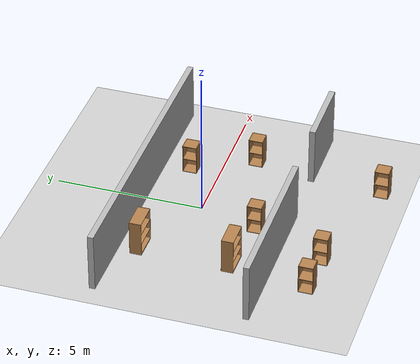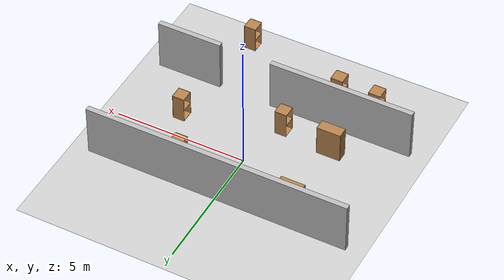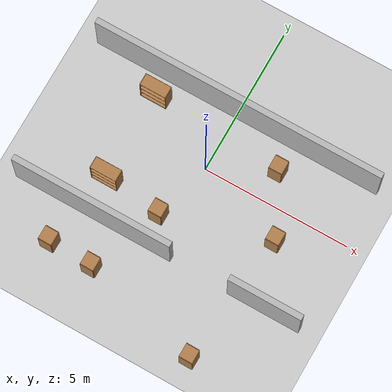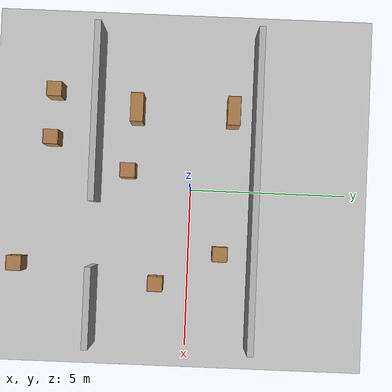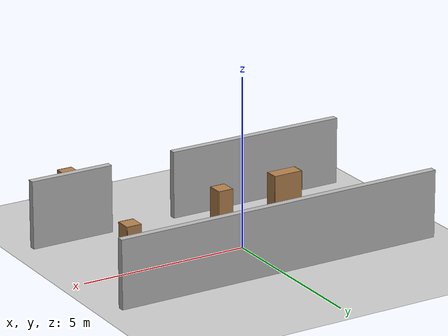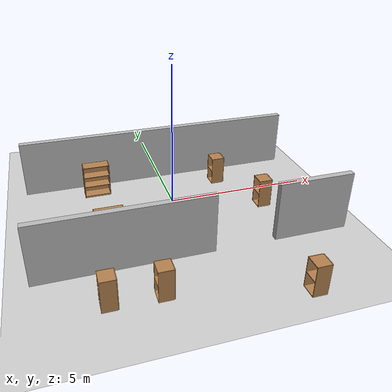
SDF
<sdf version="1.7">
 <world name="default">
  <model name="ground_plane">
   <static>1</static>
   <link name="link">
    <collision name="collision">
     <geometry><plane><normal>0 0 1</normal><size>100 100</size></plane></geometry>
     <surface><friction><ode><mu>100</mu><mu2>50</mu2></ode></friction></surface>
    </collision>
    <visual name="visual">
     <cast_shadows>0</cast_shadows>
     <geometry><plane><normal>0 0 1</normal><size>100 100</size></plane></geometry>
     <material>
      <script><uri>file://media/materials/scripts/gazebo.material</uri><name>Gazebo/Grey</name></script>
     </material>
    </visual>
    <velocity_decay><linear>0</linear><angular>0</angular></velocity_decay>
   </link>
  </model>
  <model name="wall_2_model">
   <pose>0 2 1 0 -0 0</pose>
   <static>1</static>
   <link name="wall_2_body">
    <inertial>
     <mass>1</mass>
     <inertia><ixx>1</ixx><ixy>0</ixy><ixz>0</ixz><iyy>1</iyy><iyz>0</iyz><izz>1</izz></inertia>
    </inertial>
    <collision name="collision"><geometry><box><size>10 0.2 2</size></box></geometry></collision>
    <visual name="visual"><geometry><box><size>10 0.2 2</size></box></geometry></visual>
    <velocity_decay><linear>0</linear><angular>0</angular></velocity_decay>
   </link>
  </model>
  <model name="wall_5_model">
   <pose>-2.25 -3 1 0 -0 0</pose>
   <static>1</static>
   <link name="wall_5_body">
    <inertial>
     <mass>1</mass>
     <inertia><ixx>1</ixx><ixy>0</ixy><ixz>0</ixz><iyy>1</iyy><iyz>0</iyz><izz>1</izz></inertia>
    </inertial>
    <collision name="collision"><geometry><box><size>5.5 0.2 2</size></box></geometry></collision>
    <visual name="visual"><geometry><box><size>5.5 0.2 2</size></box></geometry></visual>
    <velocity_decay><linear>0</linear><angular>0</angular></velocity_decay>
   </link>
  </model>
  <model name="wall_6_model">
   <pose>3.75 -3 1 0 -0 0</pose>
   <static>1</static>
   <link name="wall_6_body">
    <inertial>
     <mass>1</mass>
     <inertia><ixx>1</ixx><ixy>0</ixy><ixz>0</ixz><iyy>1</iyy><iyz>0</iyz><izz>1</izz></inertia>
    </inertial>
    <collision name="collision"><geometry><box><size>2.5 0.2 2</size></box></geometry></collision>
    <visual name="visual"><geometry><box><size>2.5 0.2 2</size></box></geometry></visual>
    <velocity_decay><linear>0</linear><angular>0</angular></velocity_decay>
   </link>
  </model>
  <model name="cabinet">
   <static>0</static>
   <link name="cabinet_bottom_plate">
    <inertial>
     <pose>0 0 -1 0 -0 0</pose>
     <inertia><ixx>2.05</ixx><ixy>0</ixy><ixz>0</ixz><iyy>2.05</iyy><iyz>0</iyz><izz>2.05</izz></inertia>
     <mass>25</mass>
    </inertial>
    <collision name="cabinet_bottom_plate_geom">
     <pose>0 0 0.01 0 -0 0</pose>
     <geometry><box><size>0.45 0.45 0.02</size></box></geometry>
    </collision>
    <visual name="cabinet_bottom_plate_geom_visual">
     <pose>0 0 0.01 0 -0 0</pose>
     <geometry><box><size>0.45 0.45 0.02</size></box></geometry>
     <material>
      <script><uri>file://media/materials/scripts/gazebo.material</uri><name>Gazebo/Wood</name></script>
     </material>
    </visual>
    <collision name="cabinet_bottom_plate_geom_cabinet_back_plate">
     <pose>0.235 0 0.51 0 -0 0</pose>
     <geometry><box><size>0.02 0.45 1.02</size></box></geometry>
    </collision>
    <visual name="cabinet_bottom_plate_geom_cabinet_back_plate_visual">
     <pose>0.235 0 0.51 0 -0 0</pose>
     <geometry><box><size>0.02 0.45 1.02</size></box></geometry>
     <material>
      <script><uri>file://media/materials/scripts/gazebo.material</uri><name>Gazebo/Wood</name></script>
     </material>
    </visual>
    <collision name="cabinet_bottom_plate_geom_cabinet_left_plate">
     <pose>0 0.235 0.51 0 -0 0</pose>
     <geometry><box><size>0.45 0.02 1.02</size></box></geometry>
    </collision>
    <visual name="cabinet_bottom_plate_geom_cabinet_left_plate_visual">
     <pose>0 0.235 0.51 0 -0 0</pose>
     <geometry><box><size>0.45 0.02 1.02</size></box></geometry>
     <material>
      <script><uri>file://media/materials/scripts/gazebo.material</uri><name>Gazebo/Wood</name></script>
     </material>
    </visual>
    <collision name="cabinet_bottom_plate_geom_cabinet_middle_plate">
     <pose>0 0 0.51 0 -0 0</pose>
     <geometry><box><size>0.45 0.45 0.02</size></box></geometry>
    </collision>
    <visual name="cabinet_bottom_plate_geom_cabinet_middle_plate_visual">
     <pose>0 0 0.51 0 -0 0</pose>
     <geometry><box><size>0.45 0.45 0.02</size></box></geometry>
     <material>
      <script><uri>file://media/materials/scripts/gazebo.material</uri><name>Gazebo/Wood</name></script>
     </material>
    </visual>
    <collision name="cabinet_bottom_plate_geom_cabinet_right_plate">
     <pose>0 -0.235 0.51 0 -0 0</pose>
     <geometry><box><size>0.45 0.02 1.02</size></box></geometry>
    </collision>
    <visual name="cabinet_bottom_plate_geom_cabinet_right_plate_visual">
     <pose>0 -0.235 0.51 0 -0 0</pose>
     <geometry><box><size>0.45 0.02 1.02</size></box></geometry>
     <material>
      <script><uri>file://media/materials/scripts/gazebo.material</uri><name>Gazebo/Wood</name></script>
     </material>
    </visual>
    <collision name="cabinet_bottom_plate_geom_cabinet_top_plate">
     <pose>0 0 1.01 0 -0 0</pose>
     <geometry><box><size>0.45 0.45 0.02</size></box></geometry>
    </collision>
    <visual name="cabinet_bottom_plate_geom_cabinet_top_plate_visual">
     <pose>0 0 1.01 0 -0 0</pose>
     <geometry><box><size>0.45 0.45 0.02</size></box></geometry>
     <material>
      <script><uri>file://media/materials/scripts/gazebo.material</uri><name>Gazebo/Wood</name></script>
     </material>
    </visual>
    <velocity_decay><linear>0</linear><angular>0</angular></velocity_decay>
   </link>
   <pose>1.99908 0.99991 -0 0 -2e-06 0.000704</pose>
  </model>
  <model name="cabinet_0">
   <static>0</static>
   <link name="cabinet_bottom_plate">
    <inertial>
     <pose>0 0 -1 0 -0 0</pose>
     <inertia><ixx>2.05</ixx><ixy>0</ixy><ixz>0</ixz><iyy>2.05</iyy><iyz>0</iyz><izz>2.05</izz></inertia>
     <mass>25</mass>
    </inertial>
    <collision name="cabinet_bottom_plate_geom">
     <pose>0 0 0.01 0 -0 0</pose>
     <geometry><box><size>0.45 0.45 0.02</size></box></geometry>
    </collision>
    <visual name="cabinet_bottom_plate_geom_visual">
     <pose>0 0 0.01 0 -0 0</pose>
     <geometry><box><size>0.45 0.45 0.02</size></box></geometry>
     <material>
      <script><uri>file://media/materials/scripts/gazebo.material</uri><name>Gazebo/Wood</name></script>
     </material>
    </visual>
    <collision name="cabinet_bottom_plate_geom_cabinet_back_plate">
     <pose>0.235 0 0.51 0 -0 0</pose>
     <geometry><box><size>0.02 0.45 1.02</size></box></geometry>
    </collision>
    <visual name="cabinet_bottom_plate_geom_cabinet_back_plate_visual">
     <pose>0.235 0 0.51 0 -0 0</pose>
     <geometry><box><size>0.02 0.45 1.02</size></box></geometry>
     <material>
      <script><uri>file://media/materials/scripts/gazebo.material</uri><name>Gazebo/Wood</name></script>
     </material>
    </visual>
    <collision name="cabinet_bottom_plate_geom_cabinet_left_plate">
     <pose>0 0.235 0.51 0 -0 0</pose>
     <geometry><box><size>0.45 0.02 1.02</size></box></geometry>
    </collision>
    <visual name="cabinet_bottom_plate_geom_cabinet_left_plate_visual">
     <pose>0 0.235 0.51 0 -0 0</pose>
     <geometry><box><size>0.45 0.02 1.02</size></box></geometry>
     <material>
      <script><uri>file://media/materials/scripts/gazebo.material</uri><name>Gazebo/Wood</name></script>
     </material>
    </visual>
    <collision name="cabinet_bottom_plate_geom_cabinet_middle_plate">
     <pose>0 0 0.51 0 -0 0</pose>
     <geometry><box><size>0.45 0.45 0.02</size></box></geometry>
    </collision>
    <visual name="cabinet_bottom_plate_geom_cabinet_middle_plate_visual">
     <pose>0 0 0.51 0 -0 0</pose>
     <geometry><box><size>0.45 0.45 0.02</size></box></geometry>
     <material>
      <script><uri>file://media/materials/scripts/gazebo.material</uri><name>Gazebo/Wood</name></script>
     </material>
    </visual>
    <collision name="cabinet_bottom_plate_geom_cabinet_right_plate">
     <pose>0 -0.235 0.51 0 -0 0</pose>
     <geometry><box><size>0.45 0.02 1.02</size></box></geometry>
    </collision>
    <visual name="cabinet_bottom_plate_geom_cabinet_right_plate_visual">
     <pose>0 -0.235 0.51 0 -0 0</pose>
     <geometry><box><size>0.45 0.02 1.02</size></box></geometry>
     <material>
      <script><uri>file://media/materials/scripts/gazebo.material</uri><name>Gazebo/Wood</name></script>
     </material>
    </visual>
    <collision name="cabinet_bottom_plate_geom_cabinet_top_plate">
     <pose>0 0 1.01 0 -0 0</pose>
     <geometry><box><size>0.45 0.45 0.02</size></box></geometry>
    </collision>
    <visual name="cabinet_bottom_plate_geom_cabinet_top_plate_visual">
     <pose>0 0 1.01 0 -0 0</pose>
     <geometry><box><size>0.45 0.45 0.02</size></box></geometry>
     <material>
      <script><uri>file://media/materials/scripts/gazebo.material</uri><name>Gazebo/Wood</name></script>
     </material>
    </visual>
    <velocity_decay><linear>0</linear><angular>0</angular></velocity_decay>
   </link>
   <pose>2.51443 -5.43933 -0 -1e-06 -0 -0.00721</pose>
  </model>
  <model name="bookshelf_0">
   <static>0</static>
   <link name="link">
    <inertial>
     <mass>1</mass>
     <inertia><ixx>1</ixx><ixy>0</ixy><ixz>0</ixz><iyy>1</iyy><iyz>0</iyz><izz>1</izz></inertia>
    </inertial>
    <collision name="back">
     <pose>0 0.005 0.6 0 -0 0</pose>
     <geometry><box><size>0.9 0.01 1.2</size></box></geometry>
    </collision>
    <visual name="visual1">
     <pose>0 0.005 0.6 0 -0 0</pose>
     <geometry><box><size>0.9 0.01 1.2</size></box></geometry>
     <material>
      <script><uri>file://media/materials/scripts/gazebo.material</uri><name>Gazebo/Wood</name></script>
     </material>
    </visual>
    <collision name="left_side">
     <pose>0.45 -0.195 0.6 0 -0 0</pose>
     <geometry><box><size>0.02 0.4 1.2</size></box></geometry>
    </collision>
    <visual name="visual2">
     <pose>0.45 -0.195 0.6 0 -0 0</pose>
     <geometry><box><size>0.02 0.4 1.2</size></box></geometry>
     <material>
      <script><uri>file://media/materials/scripts/gazebo.material</uri><name>Gazebo/Wood</name></script>
     </material>
    </visual>
    <collision name="right_side">
     <pose>-0.45 -0.195 0.6 0 -0 0</pose>
     <geometry><box><size>0.02 0.4 1.2</size></box></geometry>
    </collision>
    <visual name="visual3">
     <pose>-0.45 -0.195 0.6 0 -0 0</pose>
     <geometry><box><size>0.02 0.4 1.2</size></box></geometry>
     <material>
      <script><uri>file://media/materials/scripts/gazebo.material</uri><name>Gazebo/Wood</name></script>
     </material>
    </visual>
    <collision name="bottom">
     <pose>0 -0.195 0.03 0 -0 0</pose>
     <geometry><box><size>0.88 0.4 0.06</size></box></geometry>
    </collision>
    <visual name="visual4">
     <pose>0 -0.195 0.03 0 -0 0</pose>
     <geometry><box><size>0.88 0.4 0.06</size></box></geometry>
     <material>
      <script><uri>file://media/materials/scripts/gazebo.material</uri><name>Gazebo/Wood</name></script>
     </material>
    </visual>
    <collision name="top">
     <pose>0 -0.195 1.19 0 -0 0</pose>
     <geometry><box><size>0.88 0.4 0.02</size></box></geometry>
    </collision>
    <visual name="visual5">
     <pose>0 -0.195 1.19 0 -0 0</pose>
     <geometry><box><size>0.88 0.4 0.02</size></box></geometry>
     <material>
      <script><uri>file://media/materials/scripts/gazebo.material</uri><name>Gazebo/Wood</name></script>
     </material>
    </visual>
    <collision name="low_shelf">
     <pose>0 -0.195 0.43 0 -0 0</pose>
     <geometry><box><size>0.88 0.4 0.02</size></box></geometry>
    </collision>
    <visual name="visual6">
     <pose>0 -0.195 0.43 0 -0 0</pose>
     <geometry><box><size>0.88 0.4 0.02</size></box></geometry>
     <material>
      <script><uri>file://media/materials/scripts/gazebo.material</uri><name>Gazebo/Wood</name></script>
     </material>
    </visual>
    <collision name="high_shelf">
     <pose>0 -0.195 0.8 0 -0 0</pose>
     <geometry><box><size>0.88 0.4 0.02</size></box></geometry>
    </collision>
    <visual name="visual7">
     <pose>0 -0.195 0.8 0 -0 0</pose>
     <geometry><box><size>0.88 0.4 0.02</size></box></geometry>
     <material>
      <script><uri>file://media/materials/scripts/gazebo.material</uri><name>Gazebo/Wood</name></script>
     </material>
    </visual>
    <velocity_decay><linear>0</linear><angular>0</angular></velocity_decay>
   </link>
   <pose>-2.49657 -1.57894 1e-06 -4.7e-05 -1e-06 -0</pose>
  </model>
  <model name="bookshelf_1">
   <static>0</static>
   <link name="link">
    <inertial>
     <mass>1</mass>
     <inertia><ixx>1</ixx><ixy>0</ixy><ixz>0</ixz><iyy>1</iyy><iyz>0</iyz><izz>1</izz></inertia>
    </inertial>
    <collision name="back">
     <pose>0 0.005 0.6 0 -0 0</pose>
     <geometry><box><size>0.9 0.01 1.2</size></box></geometry>
    </collision>
    <visual name="visual1">
     <pose>0 0.005 0.6 0 -0 0</pose>
     <geometry><box><size>0.9 0.01 1.2</size></box></geometry>
     <material>
      <script><uri>file://media/materials/scripts/gazebo.material</uri><name>Gazebo/Wood</name></script>
     </material>
    </visual>
    <collision name="left_side">
     <pose>0.45 -0.195 0.6 0 -0 0</pose>
     <geometry><box><size>0.02 0.4 1.2</size></box></geometry>
    </collision>
    <visual name="visual2">
     <pose>0.45 -0.195 0.6 0 -0 0</pose>
     <geometry><box><size>0.02 0.4 1.2</size></box></geometry>
     <material>
      <script><uri>file://media/materials/scripts/gazebo.material</uri><name>Gazebo/Wood</name></script>
     </material>
    </visual>
    <collision name="right_side">
     <pose>-0.45 -0.195 0.6 0 -0 0</pose>
     <geometry><box><size>0.02 0.4 1.2</size></box></geometry>
    </collision>
    <visual name="visual3">
     <pose>-0.45 -0.195 0.6 0 -0 0</pose>
     <geometry><box><size>0.02 0.4 1.2</size></box></geometry>
     <material>
      <script><uri>file://media/materials/scripts/gazebo.material</uri><name>Gazebo/Wood</name></script>
     </material>
    </visual>
    <collision name="bottom">
     <pose>0 -0.195 0.03 0 -0 0</pose>
     <geometry><box><size>0.88 0.4 0.06</size></box></geometry>
    </collision>
    <visual name="visual4">
     <pose>0 -0.195 0.03 0 -0 0</pose>
     <geometry><box><size>0.88 0.4 0.06</size></box></geometry>
     <material>
      <script><uri>file://media/materials/scripts/gazebo.material</uri><name>Gazebo/Wood</name></script>
     </material>
    </visual>
    <collision name="top">
     <pose>0 -0.195 1.19 0 -0 0</pose>
     <geometry><box><size>0.88 0.4 0.02</size></box></geometry>
    </collision>
    <visual name="visual5">
     <pose>0 -0.195 1.19 0 -0 0</pose>
     <geometry><box><size>0.88 0.4 0.02</size></box></geometry>
     <material>
      <script><uri>file://media/materials/scripts/gazebo.material</uri><name>Gazebo/Wood</name></script>
     </material>
    </visual>
    <collision name="low_shelf">
     <pose>0 -0.195 0.43 0 -0 0</pose>
     <geometry><box><size>0.88 0.4 0.02</size></box></geometry>
    </collision>
    <visual name="visual6">
     <pose>0 -0.195 0.43 0 -0 0</pose>
     <geometry><box><size>0.88 0.4 0.02</size></box></geometry>
     <material>
      <script><uri>file://media/materials/scripts/gazebo.material</uri><name>Gazebo/Wood</name></script>
     </material>
    </visual>
    <collision name="high_shelf">
     <pose>0 -0.195 0.8 0 -0 0</pose>
     <geometry><box><size>0.88 0.4 0.02</size></box></geometry>
    </collision>
    <visual name="visual7">
     <pose>0 -0.195 0.8 0 -0 0</pose>
     <geometry><box><size>0.88 0.4 0.02</size></box></geometry>
     <material>
      <script><uri>file://media/materials/scripts/gazebo.material</uri><name>Gazebo/Wood</name></script>
     </material>
    </visual>
    <velocity_decay><linear>0</linear><angular>0</angular></velocity_decay>
   </link>
   <pose>-2.49816 1.46785 1e-06 -2e-06 2e-06 -0</pose>
  </model>
  <model name="cabinet_1">
   <static>0</static>
   <link name="cabinet_bottom_plate">
    <inertial>
     <pose>0 0 -1 0 -0 0</pose>
     <inertia><ixx>2.05</ixx><ixy>0</ixy><ixz>0</ixz><iyy>2.05</iyy><iyz>0</iyz><izz>2.05</izz></inertia>
     <mass>25</mass>
    </inertial>
    <collision name="cabinet_bottom_plate_geom">
     <pose>0 0 0.01 0 -0 0</pose>
     <geometry><box><size>0.45 0.45 0.02</size></box></geometry>
    </collision>
    <visual name="cabinet_bottom_plate_geom_visual">
     <pose>0 0 0.01 0 -0 0</pose>
     <geometry><box><size>0.45 0.45 0.02</size></box></geometry>
     <material>
      <script><uri>file://media/materials/scripts/gazebo.material</uri><name>Gazebo/Wood</name></script>
     </material>
    </visual>
    <collision name="cabinet_bottom_plate_geom_cabinet_back_plate">
     <pose>0.235 0 0.51 0 -0 0</pose>
     <geometry><box><size>0.02 0.45 1.02</size></box></geometry>
    </collision>
    <visual name="cabinet_bottom_plate_geom_cabinet_back_plate_visual">
     <pose>0.235 0 0.51 0 -0 0</pose>
     <geometry><box><size>0.02 0.45 1.02</size></box></geometry>
     <material>
      <script><uri>file://media/materials/scripts/gazebo.material</uri><name>Gazebo/Wood</name></script>
     </material>
    </visual>
    <collision name="cabinet_bottom_plate_geom_cabinet_left_plate">
     <pose>0 0.235 0.51 0 -0 0</pose>
     <geometry><box><size>0.45 0.02 1.02</size></box></geometry>
    </collision>
    <visual name="cabinet_bottom_plate_geom_cabinet_left_plate_visual">
     <pose>0 0.235 0.51 0 -0 0</pose>
     <geometry><box><size>0.45 0.02 1.02</size></box></geometry>
     <material>
      <script><uri>file://media/materials/scripts/gazebo.material</uri><name>Gazebo/Wood</name></script>
     </material>
    </visual>
    <collision name="cabinet_bottom_plate_geom_cabinet_middle_plate">
     <pose>0 0 0.51 0 -0 0</pose>
     <geometry><box><size>0.45 0.45 0.02</size></box></geometry>
    </collision>
    <visual name="cabinet_bottom_plate_geom_cabinet_middle_plate_visual">
     <pose>0 0 0.51 0 -0 0</pose>
     <geometry><box><size>0.45 0.45 0.02</size></box></geometry>
     <material>
      <script><uri>file://media/materials/scripts/gazebo.material</uri><name>Gazebo/Wood</name></script>
     </material>
    </visual>
    <collision name="cabinet_bottom_plate_geom_cabinet_right_plate">
     <pose>0 -0.235 0.51 0 -0 0</pose>
     <geometry><box><size>0.45 0.02 1.02</size></box></geometry>
    </collision>
    <visual name="cabinet_bottom_plate_geom_cabinet_right_plate_visual">
     <pose>0 -0.235 0.51 0 -0 0</pose>
     <geometry><box><size>0.45 0.02 1.02</size></box></geometry>
     <material>
      <script><uri>file://media/materials/scripts/gazebo.material</uri><name>Gazebo/Wood</name></script>
     </material>
    </visual>
    <collision name="cabinet_bottom_plate_geom_cabinet_top_plate">
     <pose>0 0 1.01 0 -0 0</pose>
     <geometry><box><size>0.45 0.45 0.02</size></box></geometry>
    </collision>
    <visual name="cabinet_bottom_plate_geom_cabinet_top_plate_visual">
     <pose>0 0 1.01 0 -0 0</pose>
     <geometry><box><size>0.45 0.45 0.02</size></box></geometry>
     <material>
      <script><uri>file://media/materials/scripts/gazebo.material</uri><name>Gazebo/Wood</name></script>
     </material>
    </visual>
    <velocity_decay><linear>0</linear><angular>0</angular></velocity_decay>
   </link>
   <pose>-3.0013 -4.39989 -0 -1e-06 -0 -0.00721</pose>
  </model>
  <model name="cabinet_2">
   <static>0</static>
   <link name="cabinet_bottom_plate">
    <inertial>
     <pose>0 0 -1 0 -0 0</pose>
     <inertia><ixx>2.05</ixx><ixy>0</ixy><ixz>0</ixz><iyy>2.05</iyy><iyz>0</iyz><izz>2.05</izz></inertia>
     <mass>25</mass>
    </inertial>
    <collision name="cabinet_bottom_plate_geom">
     <pose>0 0 0.01 0 -0 0</pose>
     <geometry><box><size>0.45 0.45 0.02</size></box></geometry>
    </collision>
    <visual name="cabinet_bottom_plate_geom_visual">
     <pose>0 0 0.01 0 -0 0</pose>
     <geometry><box><size>0.45 0.45 0.02</size></box></geometry>
     <material>
      <script><uri>file://media/materials/scripts/gazebo.material</uri><name>Gazebo/Wood</name></script>
     </material>
    </visual>
    <collision name="cabinet_bottom_plate_geom_cabinet_back_plate">
     <pose>0.235 0 0.51 0 -0 0</pose>
     <geometry><box><size>0.02 0.45 1.02</size></box></geometry>
    </collision>
    <visual name="cabinet_bottom_plate_geom_cabinet_back_plate_visual">
     <pose>0.235 0 0.51 0 -0 0</pose>
     <geometry><box><size>0.02 0.45 1.02</size></box></geometry>
     <material>
      <script><uri>file://media/materials/scripts/gazebo.material</uri><name>Gazebo/Wood</name></script>
     </material>
    </visual>
    <collision name="cabinet_bottom_plate_geom_cabinet_left_plate">
     <pose>0 0.235 0.51 0 -0 0</pose>
     <geometry><box><size>0.45 0.02 1.02</size></box></geometry>
    </collision>
    <visual name="cabinet_bottom_plate_geom_cabinet_left_plate_visual">
     <pose>0 0.235 0.51 0 -0 0</pose>
     <geometry><box><size>0.45 0.02 1.02</size></box></geometry>
     <material>
      <script><uri>file://media/materials/scripts/gazebo.material</uri><name>Gazebo/Wood</name></script>
     </material>
    </visual>
    <collision name="cabinet_bottom_plate_geom_cabinet_middle_plate">
     <pose>0 0 0.51 0 -0 0</pose>
     <geometry><box><size>0.45 0.45 0.02</size></box></geometry>
    </collision>
    <visual name="cabinet_bottom_plate_geom_cabinet_middle_plate_visual">
     <pose>0 0 0.51 0 -0 0</pose>
     <geometry><box><size>0.45 0.45 0.02</size></box></geometry>
     <material>
      <script><uri>file://media/materials/scripts/gazebo.material</uri><name>Gazebo/Wood</name></script>
     </material>
    </visual>
    <collision name="cabinet_bottom_plate_geom_cabinet_right_plate">
     <pose>0 -0.235 0.51 0 -0 0</pose>
     <geometry><box><size>0.45 0.02 1.02</size></box></geometry>
    </collision>
    <visual name="cabinet_bottom_plate_geom_cabinet_right_plate_visual">
     <pose>0 -0.235 0.51 0 -0 0</pose>
     <geometry><box><size>0.45 0.02 1.02</size></box></geometry>
     <material>
      <script><uri>file://media/materials/scripts/gazebo.material</uri><name>Gazebo/Wood</name></script>
     </material>
    </visual>
    <collision name="cabinet_bottom_plate_geom_cabinet_top_plate">
     <pose>0 0 1.01 0 -0 0</pose>
     <geometry><box><size>0.45 0.45 0.02</size></box></geometry>
    </collision>
    <visual name="cabinet_bottom_plate_geom_cabinet_top_plate_visual">
     <pose>0 0 1.01 0 -0 0</pose>
     <geometry><box><size>0.45 0.45 0.02</size></box></geometry>
     <material>
      <script><uri>file://media/materials/scripts/gazebo.material</uri><name>Gazebo/Wood</name></script>
     </material>
    </visual>
    <velocity_decay><linear>0</linear><angular>0</angular></velocity_decay>
   </link>
   <pose>-1.49313 -4.45606 -0 -1e-06 -0 -0.00721</pose>
  </model>
  <model name="cabinet_3">
   <static>0</static>
   <link name="cabinet_bottom_plate">
    <inertial>
     <pose>0 0 -1 0 -0 0</pose>
     <inertia><ixx>2.05</ixx><ixy>0</ixy><ixz>0</ixz><iyy>2.05</iyy><iyz>0</iyz><izz>2.05</izz></inertia>
     <mass>25</mass>
    </inertial>
    <collision name="cabinet_bottom_plate_geom">
     <pose>0 0 0.01 0 -0 0</pose>
     <geometry><box><size>0.45 0.45 0.02</size></box></geometry>
    </collision>
    <visual name="cabinet_bottom_plate_geom_visual">
     <pose>0 0 0.01 0 -0 0</pose>
     <geometry><box><size>0.45 0.45 0.02</size></box></geometry>
     <material>
      <script><uri>file://media/materials/scripts/gazebo.material</uri><name>Gazebo/Wood</name></script>
     </material>
    </visual>
    <collision name="cabinet_bottom_plate_geom_cabinet_back_plate">
     <pose>0.235 0 0.51 0 -0 0</pose>
     <geometry><box><size>0.02 0.45 1.02</size></box></geometry>
    </collision>
    <visual name="cabinet_bottom_plate_geom_cabinet_back_plate_visual">
     <pose>0.235 0 0.51 0 -0 0</pose>
     <geometry><box><size>0.02 0.45 1.02</size></box></geometry>
     <material>
      <script><uri>file://media/materials/scripts/gazebo.material</uri><name>Gazebo/Wood</name></script>
     </material>
    </visual>
    <collision name="cabinet_bottom_plate_geom_cabinet_left_plate">
     <pose>0 0.235 0.51 0 -0 0</pose>
     <geometry><box><size>0.45 0.02 1.02</size></box></geometry>
    </collision>
    <visual name="cabinet_bottom_plate_geom_cabinet_left_plate_visual">
     <pose>0 0.235 0.51 0 -0 0</pose>
     <geometry><box><size>0.45 0.02 1.02</size></box></geometry>
     <material>
      <script><uri>file://media/materials/scripts/gazebo.material</uri><name>Gazebo/Wood</name></script>
     </material>
    </visual>
    <collision name="cabinet_bottom_plate_geom_cabinet_middle_plate">
     <pose>0 0 0.51 0 -0 0</pose>
     <geometry><box><size>0.45 0.45 0.02</size></box></geometry>
    </collision>
    <visual name="cabinet_bottom_plate_geom_cabinet_middle_plate_visual">
     <pose>0 0 0.51 0 -0 0</pose>
     <geometry><box><size>0.45 0.45 0.02</size></box></geometry>
     <material>
      <script><uri>file://media/materials/scripts/gazebo.material</uri><name>Gazebo/Wood</name></script>
     </material>
    </visual>
    <collision name="cabinet_bottom_plate_geom_cabinet_right_plate">
     <pose>0 -0.235 0.51 0 -0 0</pose>
     <geometry><box><size>0.45 0.02 1.02</size></box></geometry>
    </collision>
    <visual name="cabinet_bottom_plate_geom_cabinet_right_plate_visual">
     <pose>0 -0.235 0.51 0 -0 0</pose>
     <geometry><box><size>0.45 0.02 1.02</size></box></geometry>
     <material>
      <script><uri>file://media/materials/scripts/gazebo.material</uri><name>Gazebo/Wood</name></script>
     </material>
    </visual>
    <collision name="cabinet_bottom_plate_geom_cabinet_top_plate">
     <pose>0 0 1.01 0 -0 0</pose>
     <geometry><box><size>0.45 0.45 0.02</size></box></geometry>
    </collision>
    <visual name="cabinet_bottom_plate_geom_cabinet_top_plate_visual">
     <pose>0 0 1.01 0 -0 0</pose>
     <geometry><box><size>0.45 0.45 0.02</size></box></geometry>
     <material>
      <script><uri>file://media/materials/scripts/gazebo.material</uri><name>Gazebo/Wood</name></script>
     </material>
    </visual>
    <velocity_decay><linear>0</linear><angular>0</angular></velocity_decay>
   </link>
   <pose>2.9987 -0.999837 -0 -1e-06 -0 -0.00721</pose>
  </model>
  <model name="cabinet_4">
   <static>0</static>
   <link name="cabinet_bottom_plate">
    <inertial>
     <pose>0 0 -1 0 -0 0</pose>
     <inertia><ixx>2.05</ixx><ixy>0</ixy><ixz>0</ixz><iyy>2.05</iyy><iyz>0</iyz><izz>2.05</izz></inertia>
     <mass>25</mass>
    </inertial>
    <collision name="cabinet_bottom_plate_geom">
     <pose>0 0 0.01 0 -0 0</pose>
     <geometry><box><size>0.45 0.45 0.02</size></box></geometry>
    </collision>
    <visual name="cabinet_bottom_plate_geom_visual">
     <pose>0 0 0.01 0 -0 0</pose>
     <geometry><box><size>0.45 0.45 0.02</size></box></geometry>
     <material>
      <script><uri>file://media/materials/scripts/gazebo.material</uri><name>Gazebo/Wood</name></script>
     </material>
    </visual>
    <collision name="cabinet_bottom_plate_geom_cabinet_back_plate">
     <pose>0.235 0 0.51 0 -0 0</pose>
     <geometry><box><size>0.02 0.45 1.02</size></box></geometry>
    </collision>
    <visual name="cabinet_bottom_plate_geom_cabinet_back_plate_visual">
     <pose>0.235 0 0.51 0 -0 0</pose>
     <geometry><box><size>0.02 0.45 1.02</size></box></geometry>
     <material>
      <script><uri>file://media/materials/scripts/gazebo.material</uri><name>Gazebo/Wood</name></script>
     </material>
    </visual>
    <collision name="cabinet_bottom_plate_geom_cabinet_left_plate">
     <pose>0 0.235 0.51 0 -0 0</pose>
     <geometry><box><size>0.45 0.02 1.02</size></box></geometry>
    </collision>
    <visual name="cabinet_bottom_plate_geom_cabinet_left_plate_visual">
     <pose>0 0.235 0.51 0 -0 0</pose>
     <geometry><box><size>0.45 0.02 1.02</size></box></geometry>
     <material>
      <script><uri>file://media/materials/scripts/gazebo.material</uri><name>Gazebo/Wood</name></script>
     </material>
    </visual>
    <collision name="cabinet_bottom_plate_geom_cabinet_middle_plate">
     <pose>0 0 0.51 0 -0 0</pose>
     <geometry><box><size>0.45 0.45 0.02</size></box></geometry>
    </collision>
    <visual name="cabinet_bottom_plate_geom_cabinet_middle_plate_visual">
     <pose>0 0 0.51 0 -0 0</pose>
     <geometry><box><size>0.45 0.45 0.02</size></box></geometry>
     <material>
      <script><uri>file://media/materials/scripts/gazebo.material</uri><name>Gazebo/Wood</name></script>
     </material>
    </visual>
    <collision name="cabinet_bottom_plate_geom_cabinet_right_plate">
     <pose>0 -0.235 0.51 0 -0 0</pose>
     <geometry><box><size>0.45 0.02 1.02</size></box></geometry>
    </collision>
    <visual name="cabinet_bottom_plate_geom_cabinet_right_plate_visual">
     <pose>0 -0.235 0.51 0 -0 0</pose>
     <geometry><box><size>0.45 0.02 1.02</size></box></geometry>
     <material>
      <script><uri>file://media/materials/scripts/gazebo.material</uri><name>Gazebo/Wood</name></script>
     </material>
    </visual>
    <collision name="cabinet_bottom_plate_geom_cabinet_top_plate">
     <pose>0 0 1.01 0 -0 0</pose>
     <geometry><box><size>0.45 0.45 0.02</size></box></geometry>
    </collision>
    <visual name="cabinet_bottom_plate_geom_cabinet_top_plate_visual">
     <pose>0 0 1.01 0 -0 0</pose>
     <geometry><box><size>0.45 0.45 0.02</size></box></geometry>
     <material>
      <script><uri>file://media/materials/scripts/gazebo.material</uri><name>Gazebo/Wood</name></script>
     </material>
    </visual>
    <velocity_decay><linear>0</linear><angular>0</angular></velocity_decay>
   </link>
   <pose>-0.537309 -1.99995 -1e-05 2e-06 0 -0.000723</pose>
  </model>
 </world>
</sdf>
